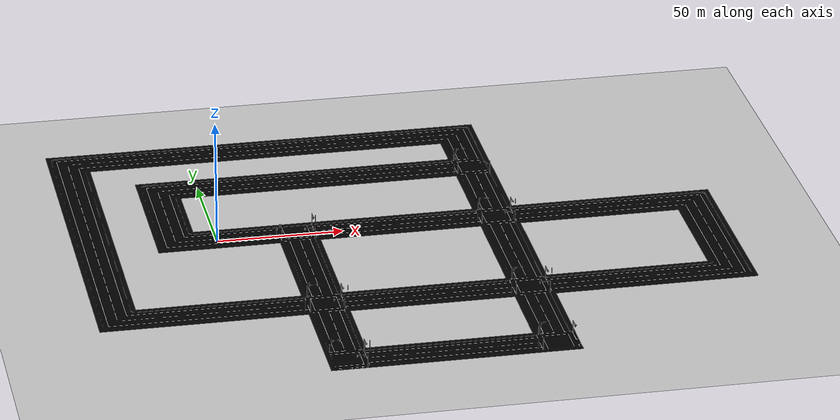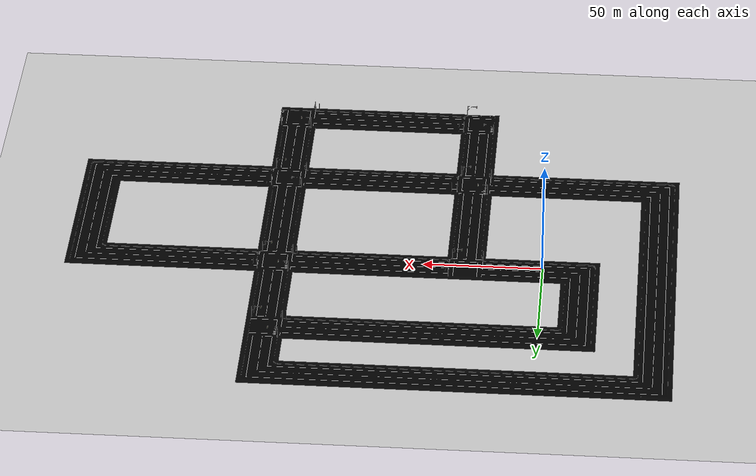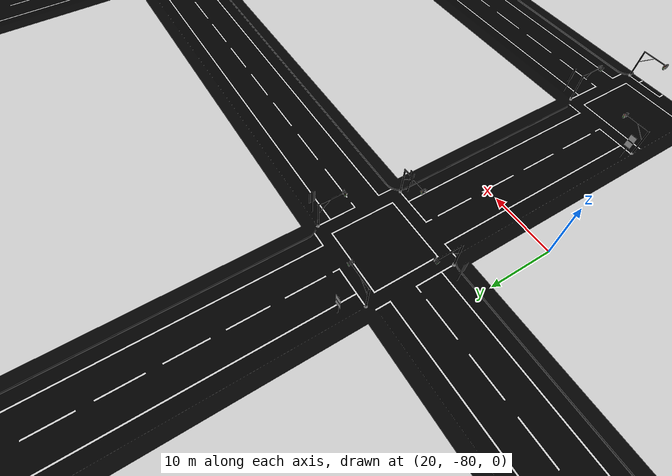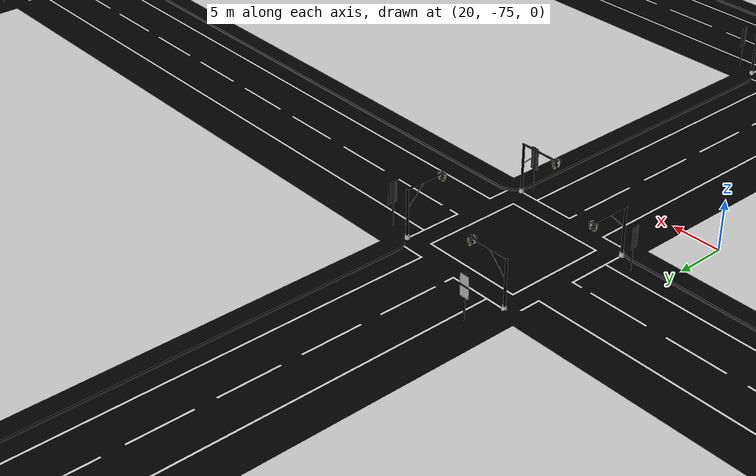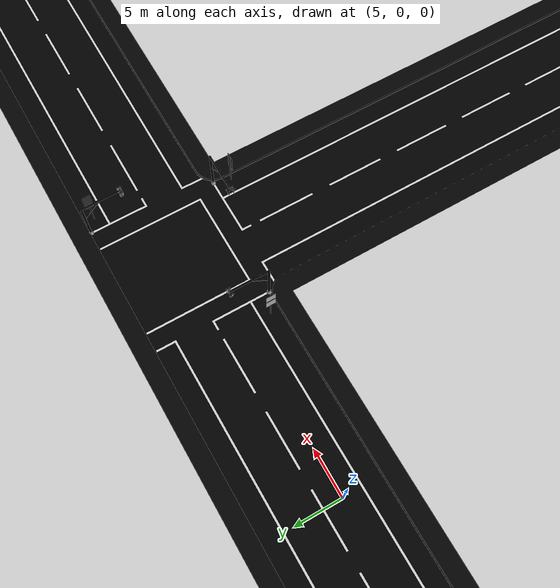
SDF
<sdf version="1.6">
 <world name="default">
  <light name="sun" type="directional">
   <pose>0 0 10 0 -0 0</pose>
   <diffuse>0.8 0.8 0.8 1</diffuse>
   <specular>0.1 0.1 0.1 1</specular>
   <attenuation>
    <range>100000</range>
    <constant>0.9</constant>
    <linear>0.01</linear>
    <quadratic>0.001</quadratic>
   </attenuation>
   <direction>-0.5 0.5 -1</direction>
   <spot><inner_angle>0</inner_angle><outer_angle>0</outer_angle><falloff>0</falloff></spot>
  </light>
  <model name="ground_plane">
   <static>1</static>
   <pose>0 0 -0.2 0 -0 0</pose>
   <scale>4 4 1</scale>
   <link name="link">
    <collision name="collision">
     <geometry><plane><normal>0 0 1</normal><size>100 100</size></plane></geometry>
     <surface><friction><ode><mu>100</mu><mu2>50</mu2></ode></friction></surface>
    </collision>
    <visual name="visual">
     <cast_shadows>0</cast_shadows>
     <geometry><plane><normal>0 0 1</normal><size>100 100</size></plane></geometry>
     <material>
      <script><uri>file://media/materials/scripts/gazebo.material</uri><name>Gazebo/Grey</name></script>
     </material>
    </visual>
   </link>
  </model>
  <gravity>0 0 -9.8</gravity>
  <magnetic_field>6e-06 2.3e-05 -4.2e-05</magnetic_field>
  <atmosphere type="adiabatic"/>
  <physics default="0" name="default_physics" type="ode">
   <max_step_size>0.001</max_step_size>
   <real_time_factor>1</real_time_factor>
   <real_time_update_rate>1000</real_time_update_rate>
  </physics>
  <scene>
   <ambient>235 235 235 1</ambient>
   <shadows>0</shadows>
   <sky><clouds><speed>12</speed></clouds></sky>
   <background>0.7 0.7 0.7 1</background>
  </scene>
  <spherical_coordinates>
   <surface_model>EARTH_WGS84</surface_model>
   <latitude_deg>0</latitude_deg>
   <longitude_deg>0</longitude_deg>
   <elevation>0</elevation>
   <heading_deg>0</heading_deg>
  </spherical_coordinates>
  <model name="Trafficsign_00001">
   <link name="main">
    <pose>0 0 0 3.14159 -1.57079 3.14159</pose>
    <visual name="main_Visual">
     <geometry><box><size>1 1 0.01</size></box></geometry>
     <material>
      <script>
       <uri>model://Trafficsign_00001/materials/scripts</uri>
       <uri>model://Trafficsign_00001/materials/textures</uri>
       <name>Trafficsign_00001</name>
      </script>
     </material>
    </visual>
   </link>
   <static>1</static>
   <pose>22.9963 -3.10558 2.75236 0 -0 0</pose>
  </model>
  <model name="Apriltag36_11_00001">
   <link name="main">
    <visual name="main_Visual">
     <geometry><box><size>1 1 0.01</size></box></geometry>
     <material>
      <script>
       <uri>model://Apriltag36_11_00001/materials/scripts</uri>
       <uri>model://Apriltag36_11_00001/materials/textures</uri>
       <name>Apriltag36_11_00001</name>
      </script>
     </material>
    </visual>
   </link>
   <static>1</static>
   <pose>22.9996 -3.10287 3.92921 3.14159 -1.57079 3.14159</pose>
  </model>
  <model name="Trafficsign_00001_clone">
   <link name="main">
    <pose>0 0 0 3.14159 -1.57079 3.14159</pose>
    <visual name="main_Visual">
     <geometry><box><size>1 1 0.01</size></box></geometry>
     <material>
      <script>
       <uri>model://Trafficsign_00001/materials/scripts</uri>
       <uri>model://Trafficsign_00001/materials/textures</uri>
       <name>Trafficsign_00001</name>
      </script>
     </material>
    </visual>
   </link>
   <static>1</static>
   <pose>27.0016 -51.5408 2.75236 0 -0 -1.5708</pose>
  </model>
  <model name="Apriltag36_11_00001_clone">
   <link name="main">
    <visual name="main_Visual">
     <geometry><box><size>1 1 0.01</size></box></geometry>
     <material>
      <script>
       <uri>model://Apriltag36_11_00001/materials/scripts</uri>
       <uri>model://Apriltag36_11_00001/materials/textures</uri>
       <name>Apriltag36_11_00001</name>
      </script>
     </material>
    </visual>
   </link>
   <static>1</static>
   <pose>27.0291 -51.5417 3.92921 1.5708 -1.57079 3.14159</pose>
  </model>
  <model name="Trafficsign_00003">
   <link name="main">
    <pose>0 0 0 3.14159 -1.57079 3.14159</pose>
    <visual name="main_Visual">
     <geometry><box><size>1 1 0.01</size></box></geometry>
     <material>
      <script>
       <uri>model://Trafficsign_00003/materials/scripts</uri>
       <uri>model://Trafficsign_00003/materials/textures</uri>
       <name>Trafficsign_00003</name>
      </script>
     </material>
    </visual>
   </link>
   <static>1</static>
   <pose>106.98 58.6046 2.74453 0 -0 -1.5708</pose>
  </model>
  <model name="Apriltag36_11_00003">
   <link name="main">
    <visual name="main_Visual">
     <geometry><box><size>1 1 0.01</size></box></geometry>
     <material>
      <script>
       <uri>model://Apriltag36_11_00003/materials/scripts</uri>
       <uri>model://Apriltag36_11_00003/materials/textures</uri>
       <name>Apriltag36_11_00003</name>
      </script>
     </material>
    </visual>
   </link>
   <static>1</static>
   <pose>106.982 58.6051 3.80889 -1.5708 0 0</pose>
  </model>
  <model name="Trafficsign_00002">
   <link name="main">
    <pose>0 0 0 3.14159 -1.57079 3.14159</pose>
    <visual name="main_Visual">
     <geometry><box><size>1 1 0.01</size></box></geometry>
     <material>
      <script>
       <uri>model://Trafficsign_00002/materials/scripts</uri>
       <uri>model://Trafficsign_00002/materials/textures</uri>
       <name>Trafficsign_00002</name>
      </script>
     </material>
    </visual>
   </link>
   <static>1</static>
   <pose>106.568 10.6851 2.74604 0 -0 -1.5708</pose>
  </model>
  <model name="Apriltag36_11_00002">
   <link name="main">
    <visual name="main_Visual">
     <geometry><box><size>1 1 0.01</size></box></geometry>
     <material>
      <script>
       <uri>model://Apriltag36_11_00002/materials/scripts</uri>
       <uri>model://Apriltag36_11_00002/materials/textures</uri>
       <name>Apriltag36_11_00002</name>
      </script>
     </material>
    </visual>
   </link>
   <static>1</static>
   <pose>106.581 10.6829 3.88756 -1.5708 0 0</pose>
  </model>
  <model name="Trafficsign_00003_clone">
   <link name="main">
    <pose>0 0 0 3.14159 -1.57079 3.14159</pose>
    <visual name="main_Visual">
     <geometry><box><size>1 1 0.01</size></box></geometry>
     <material>
      <script>
       <uri>model://Trafficsign_00003/materials/scripts</uri>
       <uri>model://Trafficsign_00003/materials/textures</uri>
       <name>Trafficsign_00003</name>
      </script>
     </material>
    </visual>
   </link>
   <static>1</static>
   <pose>121.242 -57.049 2.74453 0 -0 3.14159</pose>
  </model>
  <model name="Apriltag36_11_00003_clone">
   <link name="main">
    <visual name="main_Visual">
     <geometry><box><size>1 1 0.01</size></box></geometry>
     <material>
      <script>
       <uri>model://Apriltag36_11_00003/materials/scripts</uri>
       <uri>model://Apriltag36_11_00003/materials/textures</uri>
       <name>Apriltag36_11_00003</name>
      </script>
     </material>
    </visual>
   </link>
   <static>1</static>
   <pose>121.231 -57.0454 3.80889 -1.5708 -4e-06 -1.5708</pose>
  </model>
  <model name="Apriltag36_11_00002_clone">
   <link name="main">
    <visual name="main_Visual">
     <geometry><box><size>1 1 0.01</size></box></geometry>
     <material>
      <script>
       <uri>model://Apriltag36_11_00002/materials/scripts</uri>
       <uri>model://Apriltag36_11_00002/materials/textures</uri>
       <name>Apriltag36_11_00002</name>
      </script>
     </material>
    </visual>
   </link>
   <static>1</static>
   <pose>41.4296 -56.564 3.88756 -1.5708 4e-06 1.5765</pose>
  </model>
  <model name="Trafficsign_00002_clone">
   <link name="main">
    <pose>0 0 0 3.14159 -1.57079 3.14159</pose>
    <visual name="main_Visual">
     <geometry><box><size>1 1 0.01</size></box></geometry>
     <material>
      <script>
       <uri>model://Trafficsign_00002/materials/scripts</uri>
       <uri>model://Trafficsign_00002/materials/textures</uri>
       <name>Trafficsign_00002</name>
      </script>
     </material>
    </visual>
   </link>
   <static>1</static>
   <pose>41.4415 -56.5565 2.74604 0 -0 3.14159</pose>
  </model>
  <model name="Trafficsign_00000">
   <link name="main">
    <pose>0 0 0 3.14159 -1.57079 3.14159</pose>
    <visual name="main_Visual">
     <geometry><box><size>1 1 0.01</size></box></geometry>
     <material>
      <script>
       <uri>model://Trafficsign_00000/materials/scripts</uri>
       <uri>model://Trafficsign_00000/materials/textures</uri>
       <name>Trafficsign_00000</name>
      </script>
     </material>
    </visual>
   </link>
   <static>1</static>
   <pose>26.4669 -101.108 2.74745 -0 -0 -1.5708</pose>
  </model>
  <model name="Apriltag36_11_00000">
   <link name="main">
    <visual name="main_Visual">
     <geometry><box><size>1 1 0.01</size></box></geometry>
     <material>
      <script>
       <uri>model://Apriltag36_11_00000/materials/scripts</uri>
       <uri>model://Apriltag36_11_00000/materials/textures</uri>
       <name>Apriltag36_11_00000</name>
      </script>
     </material>
    </visual>
   </link>
   <static>1</static>
   <pose>26.438 -101.047 3.93468 -1.5708 0 0</pose>
  </model>
  <model name="urban_track">
   <link name="urban_track_link">
    <pose>0 2 -0.01 0 -0 3.14</pose>
    <inertial>
     <mass>1</mass>
     <inertia><ixx>1</ixx><ixy>0</ixy><ixz>0</ixz><iyy>1</iyy><iyz>0</iyz><izz>1</izz></inertia>
    </inertial>
    <visual name="urban_track_visual">
     <geometry><mesh><uri>model://mesh_road_urban.dae</uri></mesh></geometry>
     <material><shader type="vertex"><normal_map>__default__</normal_map></shader></material>
    </visual>
    <collision name="urban_track_collision">
     <geometry><mesh><uri>model://mesh_road_urban.dae</uri></mesh></geometry>
     <surface>
      <friction>
       <ode><mu>1</mu><mu2>1</mu2><fdir1>0 0 0</fdir1><slip1>0</slip1><slip2>0</slip2></ode>
       <torsional>
        <coefficient>1</coefficient>
        <patch_radius>0</patch_radius>
        <surface_radius>0</surface_radius>
        <use_patch_radius>1</use_patch_radius>
        <ode><slip>0</slip></ode>
       </torsional>
      </friction>
      <bounce><restitution_coefficient>0</restitution_coefficient><threshold>1e+06</threshold></bounce>
      <contact>
       <collide_without_contact>0</collide_without_contact>
       <collide_without_contact_bitmask>1</collide_without_contact_bitmask>
       <collide_bitmask>1</collide_bitmask>
       <ode>
        <soft_cfm>0</soft_cfm>
        <soft_erp>0.2</soft_erp>
        <kp>1e+13</kp>
        <kd>1</kd>
        <max_vel>0.01</max_vel>
        <min_depth>0</min_depth>
       </ode>
       <bullet>
        <split_impulse>1</split_impulse>
        <split_impulse_penetration_threshold>-0.01</split_impulse_penetration_threshold>
        <soft_cfm>0</soft_cfm>
        <soft_erp>0.2</soft_erp>
        <kp>1e+13</kp>
        <kd>1</kd>
       </bullet>
      </contact>
     </surface>
    </collision>
   </link>
   <static>1</static>
  </model>
  <light name="user_directional_light_0" type="directional">
   <pose>39.8371 8.56244 1 0 -0 0</pose>
   <diffuse>0.5 0.5 0.5 1</diffuse>
   <specular>0.1 0.1 0.1 1</specular>
   <direction>0.1 0.1 -0.9</direction>
   <attenuation>
    <range>20</range>
    <constant>0.5</constant>
    <linear>0.01</linear>
    <quadratic>0.001</quadratic>
   </attenuation>
  </light>
  <light name="user_directional_light_1" type="directional">
   <pose>9.69195 1.20616 1 0 -0 0</pose>
   <diffuse>0.5 0.5 0.5 1</diffuse>
   <specular>0.1 0.1 0.1 1</specular>
   <direction>0.1 0.1 -0.9</direction>
   <attenuation>
    <range>20</range>
    <constant>0.5</constant>
    <linear>0.01</linear>
    <quadratic>0.001</quadratic>
   </attenuation>
  </light>
  <light name="user_directional_light_2" type="directional">
   <pose>108.69 68.5173 1 0 -0 0</pose>
   <diffuse>0.5 0.5 0.5 1</diffuse>
   <specular>0.1 0.1 0.1 1</specular>
   <direction>0.1 0.1 -0.9</direction>
   <attenuation>
    <range>20</range>
    <constant>0.5</constant>
    <linear>0.01</linear>
    <quadratic>0.001</quadratic>
   </attenuation>
  </light>
  <light name="user_spot_light_0" type="spot">
   <pose>110.36 63.7443 1 0 -0 0</pose>
   <diffuse>0.5 0.5 0.5 1</diffuse>
   <specular>0.1 0.1 0.1 1</specular>
   <direction>0 0 -1</direction>
   <attenuation>
    <range>20</range>
    <constant>0.5</constant>
    <linear>0.01</linear>
    <quadratic>0.001</quadratic>
   </attenuation>
   <cast_shadows>0</cast_shadows>
   <spot><inner_angle>0.6</inner_angle><outer_angle>1</outer_angle><falloff>1</falloff></spot>
  </light>
  <light name="user_point_light_0" type="point">
   <pose>108.201 66.719 1 0 -0 0</pose>
   <diffuse>0.5 0.5 0.5 1</diffuse>
   <specular>0.1 0.1 0.1 1</specular>
   <attenuation>
    <range>20</range>
    <constant>0.5</constant>
    <linear>0.01</linear>
    <quadratic>0.001</quadratic>
   </attenuation>
   <cast_shadows>0</cast_shadows>
   <direction>0 0 -1</direction>
  </light>
 </world>
</sdf>
